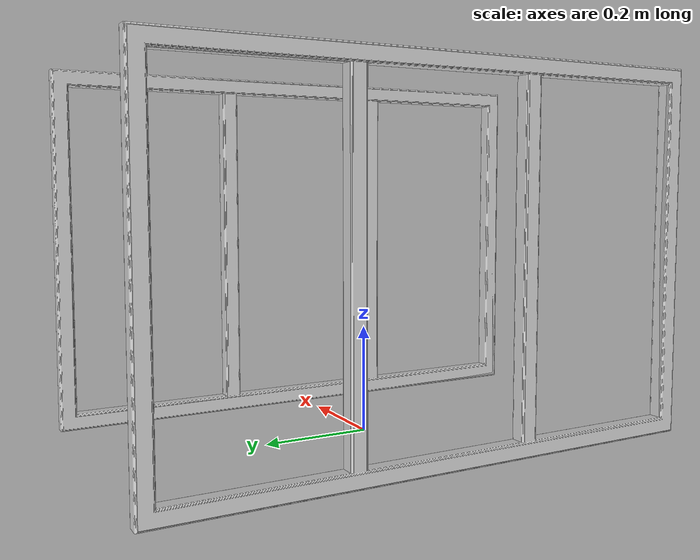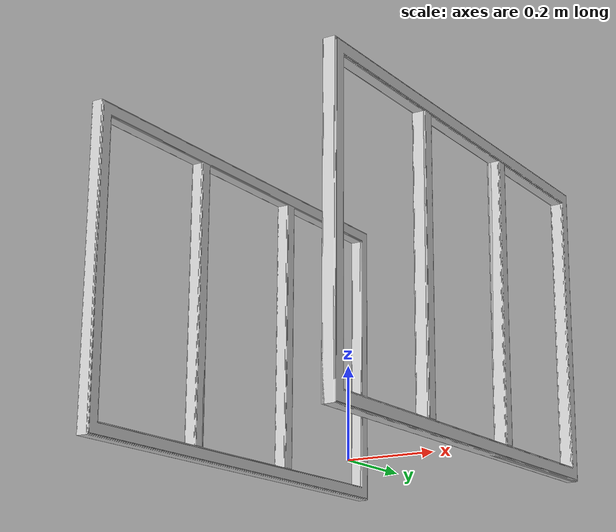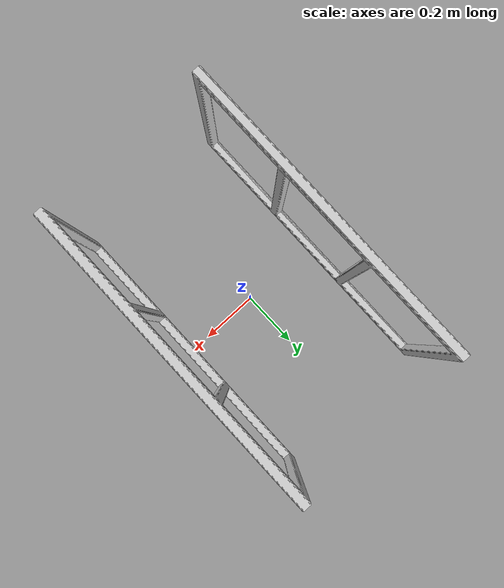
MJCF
<?xml version="1.0" ?>
<mujoco model="drawer_base">
  <asset>
    <mesh name="visual_mesh" file="./../meshes/drawer_base_visual.stl"/>
    <mesh name="collision_mesh" file="./../meshes/drawer_base_collision.stl"/>
  </asset>
  <worldbody>
    <body>
      <body name="object">
        <geom name="visual" type="mesh" mesh="visual_mesh" rgba="0.8 0.8 0.8 1.0" contype="0" conaffinity="0" group="1" density="1"/>
        <geom name="collision" type="mesh" mesh="collision_mesh" rgba="0.5 0.5 0.5 0.3" density="500.0" friction="0.95 0.3 0.1" condim="4" solref="0.001 1" solimp="0.998 0.998 0.001" group="0"/>
      </body>
      <site rgba="0 0 0 0" size="0.005" pos="0 0 0" name="bottom_site"/>
      <site rgba="0 0 0 0" size="0.005" pos="0 0 0.1" name="top_site"/>
      <site rgba="0 0 0 0" size="0.005" pos="0.05 0 0.05" name="horizontal_radius_site"/>
    </body>
  </worldbody>
</mujoco>
